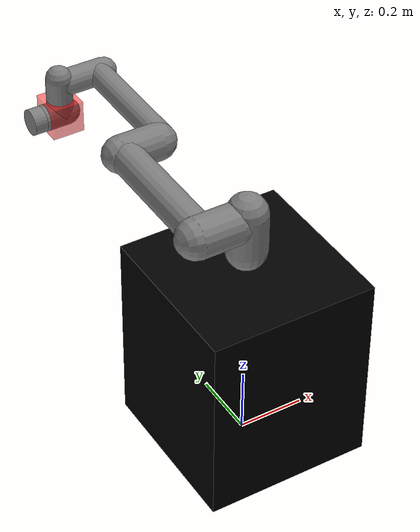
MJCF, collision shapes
<mujoco model="ur5e scene">
  <include file="/home/ur5/catkin_ws//config/ur5e_calibration.xml" />

  <statistic center="0.4 0 0.4" extent="1" />

  <asset>
    <texture type="skybox" builtin="flat" rgb1="1 1 1" rgb2="1 1 1" width="512" height="3072" />
  </asset>

  <worldbody>
    <light diffuse="0. 0. 0." specular="0. 0. 0." />
  </worldbody>
</mujoco>

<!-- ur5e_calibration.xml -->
<mujoco model="ur5e">
  <compiler angle="radian" meshdir="assets_ur5" autolimits="true" eulerseq="xyz" />

  <option integrator="implicitfast" />

  <default>
    <default class="ur5e">
      <material specular="0." shininess="0." />
      <joint axis="0 1 0" range="-6.28319 6.28319" armature="0.1" />
      <general gaintype="fixed" biastype="affine" ctrlrange="-6.2831 6.2831" gainprm="2000" biasprm="0 -2000 -400" forcerange="-150 150" />
      <default class="size3">
        <default class="size3_limited">
          <joint range="-3.1415 3.1415" />
          <general ctrlrange="-3.1415 3.1415" />
        </default>
      </default>
      <default class="size1">
        <general gainprm="500" biasprm="0 -500 -100" forcerange="-28 28" />
      </default>
      <default class="visual">
        <geom type="mesh" contype="0" conaffinity="0" group="2" />
      </default>
      <default class="collision">
        <geom type="capsule" group="3" />
        <default class="eef_collision">
          <geom type="cylinder" />
        </default>
      </default>
      <site size="0.001" rgba="0.5 0.5 0.5 0.3" group="4" />
    </default>
  </default>

  <asset>
    <material class="ur5e" name="black" rgba="0. 0. 0. 1" />
    <material class="ur5e" name="red" rgba="1. 0. 0. 0.5" />
    <material class="ur5e" name="invisible" rgba="0. 0. 0. 0." />

    <mesh file="base_0.obj" />
    <mesh file="base_1.obj" />
    <mesh file="shoulder_0.obj" />
    <mesh file="shoulder_1.obj" />
    <mesh file="shoulder_2.obj" />
    <mesh file="upperarm_0.obj" />
    <mesh file="upperarm_1.obj" />
    <mesh file="upperarm_2.obj" />
    <mesh file="upperarm_3.obj" />
    <mesh file="forearm_0.obj" />
    <mesh file="forearm_1.obj" />
    <mesh file="forearm_2.obj" />
    <mesh file="forearm_3.obj" />
    <mesh file="wrist1_0.obj" />
    <mesh file="wrist1_1.obj" />
    <mesh file="wrist1_2.obj" />
    <mesh file="wrist2_0.obj" />
    <mesh file="wrist2_1.obj" />
    <mesh file="wrist2_2.obj" />
    <mesh file="wrist3.obj" />
  </asset>

  <worldbody>
    <body name="cube" pos="0 0 0.3">
      <geom type="box" size="0.25 0.25 0.3" material="black" class="visual" />
    <body name="base" quat="1 0 0 1" childclass="ur5e" pos="0 0 0.3">
      <inertial mass="4.0" pos="0 0 0" diaginertia="0.00443333156 0.00443333156 0.0072" />
      <geom mesh="base_0" material="black" class="visual" />
      <geom mesh="base_1" material="black" class="visual" />
      <body name="shoulder_link" pos="0 0 0.163">
        <inertial mass="3.7" pos="0 0 0" diaginertia="0.0102675 0.0102675 0.00666" />
        <joint name="shoulder_pan_joint" class="size3" axis="0 0 1" />
        <geom mesh="shoulder_0" material="black" class="visual" />
        <geom mesh="shoulder_1" material="black" class="visual" />
        <geom mesh="shoulder_2" material="black" class="visual" />
        <geom class="collision" size="0.06 0.06" pos="0 0 -0.04" />
        <body name="upper_arm_link" pos="0 0.138 0" quat="1 0 1 0">
          <inertial mass="8.393" pos="0 0 0.2125" diaginertia="0.133886 0.133886 0.0151074" />
          <joint name="shoulder_lift_joint" class="size3" />
          <geom mesh="upperarm_0" material="black" class="visual" />
          <geom mesh="upperarm_1" material="black" class="visual" />
          <geom mesh="upperarm_2" material="black" class="visual" />
          <geom mesh="upperarm_3" material="black" class="visual" />
          <geom class="collision" pos="0 -0.04 0" quat="1 1 0 0" size="0.06 0.06" />
          <geom class="collision" size="0.05 0.2" pos="0 0 0.2" />
          <body name="forearm_link" pos="0 -0.131 0.425">
            <inertial mass="2.275" pos="0 0 0.196" diaginertia="0.0311796 0.0311796 0.004095" />
            <joint name="elbow_joint" class="size3_limited" />
            <geom mesh="forearm_0" material="black" class="visual" />
            <geom mesh="forearm_1" material="black" class="visual" />
            <geom mesh="forearm_2" material="black" class="visual" />
            <geom mesh="forearm_3" material="black" class="visual" />
            <geom class="collision" pos="0 0.08 0" quat="1 1 0 0" size="0.055 0.06" />
            <geom class="collision" size="0.038 0.19" pos="0 0 0.2" />
            <body name="wrist_1_link" pos="0 0 0.392" quat="1 0 1 0">
              <inertial mass="1.219" pos="0 0.127 0" diaginertia="0.0025599 0.0025599 0.0021942" />
              <joint name="wrist_1_joint" class="size1" />
              <geom mesh="wrist1_0" material="black" class="visual" />
              <geom mesh="wrist1_1" material="black" class="visual" />
              <geom mesh="wrist1_2" material="black" class="visual" />
              <geom class="collision" pos="0 0.05 0" quat="1 1 0 0" size="0.04 0.07" />
              <body name="wrist_2_link" pos="0 0.127 0">
                <inertial mass="1.219" pos="0 0 0.1" diaginertia="0.0025599 0.0025599 0.0021942" />
                <joint name="wrist_2_joint" axis="0 0 1" class="size1" />
                <geom mesh="wrist2_0" material="black" class="visual" />
                <geom mesh="wrist2_1" material="black" class="visual" />
                <geom mesh="wrist2_2" material="black" class="visual" />
                <geom class="collision" size="0.04 0.06" pos="0 0 0.04" />
                <geom class="collision" pos="0 0.02 0.1" quat="1 1 0 0" size="0.04 0.04" />
                <body name="wrist_3_link" pos="0 0 0.1">
                  <inertial mass="0.1889" pos="0 0.0771683 0" quat="1 0 0 1" diaginertia="0.000132134 9.90863e-05 9.90863e-05" />
                  <joint name="wrist_3_joint" class="size1" />
                  <geom material="black" mesh="wrist3" class="visual" />
                  <geom class="eef_collision" pos="0 0.08 0" quat="1 1 0 0" size="0.04 0.02" />
                  <site name="attachment_site" pos="0 0.1 0" quat="-1 1 0 0" />
                <body name="camera_block" pos="0 0 0">
        <inertial pos="0 0 0" mass="0.1" diaginertia="0.001 0.001 0.001" />
        <joint name="slide_x" type="slide" axis="1 0 0" />
        <joint name="slide_y" type="slide" axis="0 1 0" />
        <joint name="slide_z" type="slide" axis="0 0 1" />
        <joint name="roll" type="hinge" axis="1 0 0" />
        <joint name="pitch" type="hinge" axis="0 1 0" />
        <joint name="yaw" type="hinge" axis="0 0 1" />
        <geom type="box" size="0.05 0.05 0.05" material="red" class="visual" />

        <camera name="front" pos="0 0 0" quat="1 0 1 0" fovy="90" />
        <camera name="back" pos="0 0 0" quat="1 0 -1 0" fovy="90" />
        <camera name="top" pos="0 0 0" quat="1 1 0 0" fovy="90" />
        <camera name="bottom" pos="0 0 0" quat="1 -1 0 0" fovy="90" />
        <camera name="left" pos="0 0 0" quat="0 1 0 0" fovy="90" />
        <camera name="right" pos="0 0 0" quat="1 0 0 0" fovy="90" />
    </body></body>
              </body>
            </body>
          </body>
        </body>
      </body>
    </body>
    </body>
  </worldbody>

  <actuator>
    <general class="size3" name="shoulder_pan" joint="shoulder_pan_joint" />
    <general class="size3" name="shoulder_lift" joint="shoulder_lift_joint" />
    <general class="size3_limited" name="elbow" joint="elbow_joint" />
    <general class="size1" name="wrist_1" joint="wrist_1_joint" />
    <general class="size1" name="wrist_2" joint="wrist_2_joint" />
    <general class="size1" name="wrist_3" joint="wrist_3_joint" />
  <general class="size1" name="slide_x" joint="slide_x" /><general class="size1" name="slide_y" joint="slide_y" /><general class="size1" name="slide_z" joint="slide_z" /><general class="size1" name="roll" joint="roll" /><general class="size1" name="pitch" joint="pitch" /><general class="size1" name="yaw" joint="yaw" /></actuator>

  <keyframe>
    <key name="home" qpos="-1.5708 -1.5708 1.5708 -1.5708 -1.5708 0 0 0 0 0 0 0" ctrl="-1.5708 -1.5708 1.5708 -1.5708 -1.5708 0 0 0 0 0 0 0" />
  </keyframe>
</mujoco>
